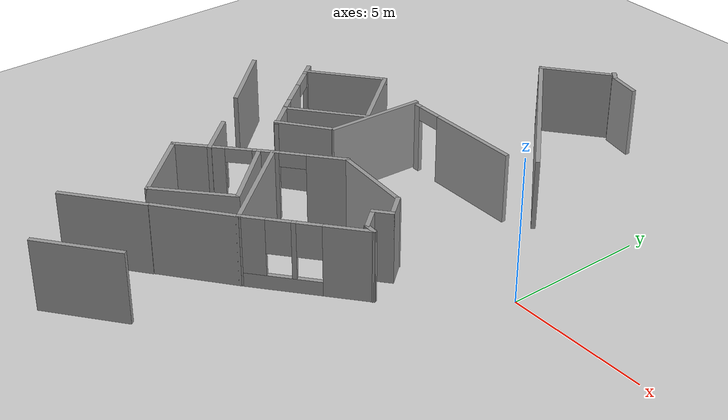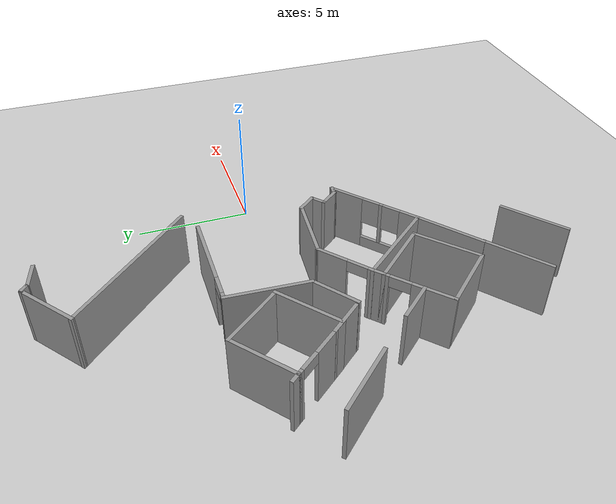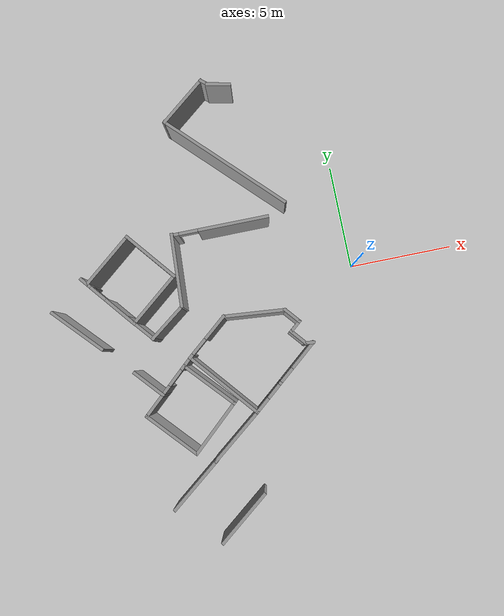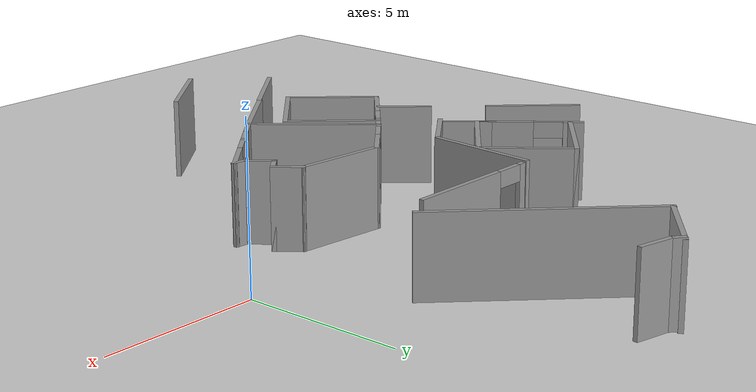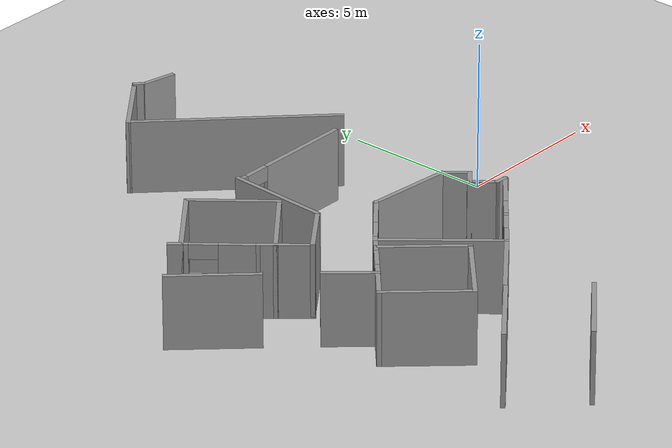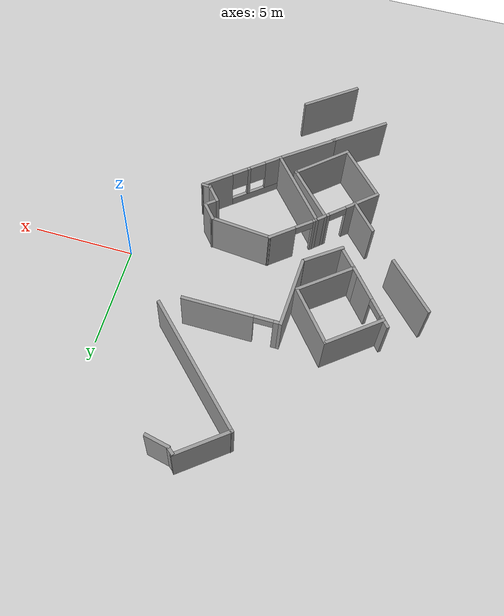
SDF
<sdf version="1.6">
 <world name="default">
  <model name="ground_plane">
   <static>1</static>
   <link name="link">
    <collision name="collision">
     <geometry><plane><normal>0 0 1</normal><size>100 100</size></plane></geometry>
     <surface>
      <contact><collide_bitmask>65535</collide_bitmask></contact>
      <friction><ode><mu>100</mu><mu2>50</mu2></ode></friction>
     </surface>
    </collision>
    <visual name="visual">
     <cast_shadows>0</cast_shadows>
     <geometry><plane><normal>0 0 1</normal><size>100 100</size></plane></geometry>
     <material>
      <script><uri>file://media/materials/scripts/gazebo.material</uri><name>Gazebo/Grey</name></script>
     </material>
    </visual>
   </link>
  </model>
  <model name="wall(6.9)">
   <link name="Wall_106">
    <inertial>
     <mass>1</mass>
     <inertia><ixx>1</ixx><ixy>0</ixy><ixz>0</ixz><iyy>1</iyy><iyz>0</iyz><izz>1</izz></inertia>
    </inertial>
    <visual name="Wall_106_Visual">
     <pose>0 0 1.25 0 -0 0</pose>
     <geometry><box><size>6.9 0.15 2.5</size></box></geometry>
     <material>
      <script><uri>file://media/materials/scripts/gazebo.material</uri><name>Gazebo/Grey</name></script>
      <ambient>1 1 1 1</ambient>
      <shader type="vertex"><normal_map>__default__</normal_map></shader>
      <diffuse>0.7 0.7 0.7 1</diffuse>
      <specular>0.01 0.01 0.01 1</specular>
      <emissive>0 0 0 1</emissive>
     </material>
     <meta><layer>0</layer></meta>
    </visual>
    <collision name="Wall_106_Collision">
     <pose>0 0 1.25 0 -0 0</pose>
     <geometry><box><size>6.75 0.15 2.5</size></box></geometry>
     <surface>
      <friction>
       <ode><mu>1</mu><mu2>1</mu2><fdir1>0 0 0</fdir1><slip1>0</slip1><slip2>0</slip2></ode>
       <torsional>
        <coefficient>1</coefficient>
        <patch_radius>0</patch_radius>
        <surface_radius>0</surface_radius>
        <use_patch_radius>1</use_patch_radius>
        <ode><slip>0</slip></ode>
       </torsional>
      </friction>
      <bounce><restitution_coefficient>0</restitution_coefficient><threshold>1e+06</threshold></bounce>
      <contact>
       <collide_without_contact>0</collide_without_contact>
       <collide_without_contact_bitmask>1</collide_without_contact_bitmask>
       <collide_bitmask>1</collide_bitmask>
       <ode>
        <soft_cfm>0</soft_cfm>
        <soft_erp>0.2</soft_erp>
        <kp>1e+13</kp>
        <kd>1</kd>
        <max_vel>0.01</max_vel>
        <min_depth>0</min_depth>
       </ode>
       <bullet>
        <split_impulse>1</split_impulse>
        <split_impulse_penetration_threshold>-0.01</split_impulse_penetration_threshold>
        <soft_cfm>0</soft_cfm>
        <soft_erp>0.2</soft_erp>
        <kp>1e+13</kp>
        <kd>1</kd>
       </bullet>
      </contact>
     </surface>
    </collision>
   </link>
   <static>1</static>
   <pose>-5.08386 5.75321 0 0 0 -0.789714</pose>
  </model>
  <model name="wall_6.75">
   <pose>-6.43503 8.95426 0 0 -0 0.672508</pose>
   <link name="Wall_108">
    <collision name="Wall_108_Collision">
     <geometry><box><size>2.75 0.15 2.5</size></box></geometry>
     <pose>0 0 1.25 0 -0 0</pose>
    </collision>
    <visual name="Wall_108_Visual">
     <pose>0 0 1.25 0 -0 0</pose>
     <geometry><box><size>2.75 0.15 2.5</size></box></geometry>
     <material>
      <script><uri>file://media/materials/scripts/gazebo.material</uri><name>Gazebo/Grey</name></script>
      <ambient>1 1 1 1</ambient>
     </material>
     <meta><layer>0</layer></meta>
    </visual>
   </link>
   <link name="Wall_109">
    <collision name="Wall_109_Collision">
     <geometry><box><size>0.15 0.15 2.5</size></box></geometry>
     <pose>0 0 1.25 0 -0 0</pose>
    </collision>
    <visual name="Wall_109_Visual">
     <pose>0 0 1.25 0 -0 0</pose>
     <geometry><box><size>0.15 0.15 2.5</size></box></geometry>
     <material>
      <script><uri>file://media/materials/scripts/gazebo.material</uri><name>Gazebo/Grey</name></script>
      <ambient>0 0 0 1</ambient>
     </material>
     <meta><layer>0</layer></meta>
    </visual>
    <pose>1.3 0 0 0 -0 0</pose>
   </link>
   <static>1</static>
  </model>
  <model name="wall(6.9)_0">
   <link name="Wall_106">
    <inertial>
     <mass>1</mass>
     <inertia><ixx>1</ixx><ixy>0</ixy><ixz>0</ixz><iyy>1</iyy><iyz>0</iyz><izz>1</izz></inertia>
    </inertial>
    <visual name="Wall_106_Visual">
     <pose>0 0 1.25 0 -0 0</pose>
     <geometry><box><size>0.4 0.15 2.5</size></box></geometry>
     <material>
      <script><uri>file://media/materials/scripts/gazebo.material</uri><name>Gazebo/Grey</name></script>
      <ambient>1 1 1 1</ambient>
      <shader type="vertex"><normal_map>__default__</normal_map></shader>
      <diffuse>0.7 0.7 0.7 1</diffuse>
      <specular>0.01 0.01 0.01 1</specular>
      <emissive>0 0 0 1</emissive>
     </material>
     <meta><layer>0</layer></meta>
    </visual>
    <collision name="Wall_106_Collision">
     <pose>0 0 1.25 0 -0 0</pose>
     <geometry><box><size>6.75 0.15 2.5</size></box></geometry>
     <surface>
      <friction>
       <ode><mu>1</mu><mu2>1</mu2><fdir1>0 0 0</fdir1><slip1>0</slip1><slip2>0</slip2></ode>
       <torsional>
        <coefficient>1</coefficient>
        <patch_radius>0</patch_radius>
        <surface_radius>0</surface_radius>
        <use_patch_radius>1</use_patch_radius>
        <ode><slip>0</slip></ode>
       </torsional>
      </friction>
      <bounce><restitution_coefficient>0</restitution_coefficient><threshold>1e+06</threshold></bounce>
      <contact>
       <collide_without_contact>0</collide_without_contact>
       <collide_without_contact_bitmask>1</collide_without_contact_bitmask>
       <collide_bitmask>1</collide_bitmask>
       <ode>
        <soft_cfm>0</soft_cfm>
        <soft_erp>0.2</soft_erp>
        <kp>1e+13</kp>
        <kd>1</kd>
        <max_vel>0.01</max_vel>
        <min_depth>0</min_depth>
       </ode>
       <bullet>
        <split_impulse>1</split_impulse>
        <split_impulse_penetration_threshold>-0.01</split_impulse_penetration_threshold>
        <soft_cfm>0</soft_cfm>
        <soft_erp>0.2</soft_erp>
        <kp>1e+13</kp>
        <kd>1</kd>
       </bullet>
      </contact>
     </surface>
    </collision>
   </link>
   <static>1</static>
   <pose>-5.32136 9.65621 0.050769 0 0 -0.689163</pose>
  </model>
  <model name="wall(1.2)">
   <link name="Wall_106">
    <inertial>
     <mass>1</mass>
     <inertia><ixx>1</ixx><ixy>0</ixy><ixz>0</ixz><iyy>1</iyy><iyz>0</iyz><izz>1</izz></inertia>
    </inertial>
    <visual name="Wall_106_Visual">
     <pose>0 0 1.25 0 -0 0</pose>
     <geometry><box><size>1.2 0.15 2.5</size></box></geometry>
     <material>
      <script><uri>file://media/materials/scripts/gazebo.material</uri><name>Gazebo/Grey</name></script>
      <ambient>1 1 1 1</ambient>
      <shader type="vertex"><normal_map>__default__</normal_map></shader>
      <diffuse>0.7 0.7 0.7 1</diffuse>
      <specular>0.01 0.01 0.01 1</specular>
      <emissive>0 0 0 1</emissive>
     </material>
     <meta><layer>0</layer></meta>
    </visual>
    <collision name="Wall_106_Collision">
     <pose>0 0 1.25 0 -0 0</pose>
     <geometry><box><size>6.75 0.15 2.5</size></box></geometry>
     <surface>
      <friction>
       <ode><mu>1</mu><mu2>1</mu2><fdir1>0 0 0</fdir1><slip1>0</slip1><slip2>0</slip2></ode>
       <torsional>
        <coefficient>1</coefficient>
        <patch_radius>0</patch_radius>
        <surface_radius>0</surface_radius>
        <use_patch_radius>1</use_patch_radius>
        <ode><slip>0</slip></ode>
       </torsional>
      </friction>
      <bounce><restitution_coefficient>0</restitution_coefficient><threshold>1e+06</threshold></bounce>
      <contact>
       <collide_without_contact>0</collide_without_contact>
       <collide_without_contact_bitmask>1</collide_without_contact_bitmask>
       <collide_bitmask>1</collide_bitmask>
       <ode>
        <soft_cfm>0</soft_cfm>
        <soft_erp>0.2</soft_erp>
        <kp>1e+13</kp>
        <kd>1</kd>
        <max_vel>0.01</max_vel>
        <min_depth>0</min_depth>
       </ode>
       <bullet>
        <split_impulse>1</split_impulse>
        <split_impulse_penetration_threshold>-0.01</split_impulse_penetration_threshold>
        <soft_cfm>0</soft_cfm>
        <soft_erp>0.2</soft_erp>
        <kp>1e+13</kp>
        <kd>1</kd>
       </bullet>
      </contact>
     </surface>
    </collision>
   </link>
   <static>1</static>
   <pose>-4.65892 9.41484 0.050769 0 0 -0.207289</pose>
  </model>
  <model name="P_tuna_room">
   <pose>-5.41392 -2.97136 0 0 0 -2.4469</pose>
   <link name="Wall_10">
    <collision name="Wall_10_Collision">
     <geometry><box><size>1 0.15 2.5</size></box></geometry>
     <pose>0 0 1.25 0 -0 0</pose>
    </collision>
    <visual name="Wall_10_Visual">
     <pose>0 0 1.25 0 -0 0</pose>
     <geometry><box><size>1 0.15 2.5</size></box></geometry>
     <material>
      <script><uri>file://media/materials/scripts/gazebo.material</uri><name>Gazebo/Grey</name></script>
      <ambient>1 1 1 1</ambient>
     </material>
     <meta><layer>0</layer></meta>
    </visual>
    <pose>-1.61072 1.30888 0 0 -0 1.5708</pose>
   </link>
   <link name="Wall_11">
    <collision name="Wall_11_Collision">
     <geometry><box><size>0.5 0.15 2.5</size></box></geometry>
     <pose>0 0 1.25 0 -0 0</pose>
    </collision>
    <visual name="Wall_11_Visual">
     <pose>0 0 1.25 0 -0 0</pose>
     <geometry><box><size>0.5 0.15 2.5</size></box></geometry>
     <material>
      <script><uri>file://media/materials/scripts/gazebo.material</uri><name>Gazebo/Grey</name></script>
      <ambient>1 1 1 1</ambient>
     </material>
     <meta><layer>0</layer></meta>
    </visual>
    <pose>-1.73447 1.85763 0 0 -0 2.35619</pose>
   </link>
   <link name="Wall_12">
    <pose>0.191787 1.98137 0 0 -0 0</pose>
    <visual name="Wall_12_Visual_0">
     <pose>-1.32113 0 1.25 0 -0 0</pose>
     <geometry><box><size>1.60774 0.15 2.5</size></box></geometry>
     <material>
      <script><uri>file://media/materials/scripts/gazebo.material</uri><name>Gazebo/Grey</name></script>
      <ambient>1 1 1 1</ambient>
     </material>
     <meta><layer>0</layer></meta>
    </visual>
    <collision name="Wall_12_Collision_0">
     <geometry><box><size>1.60774 0.15 2.5</size></box></geometry>
     <pose>-1.32113 0 1.25 0 -0 0</pose>
    </collision>
    <visual name="Wall_12_Visual_1">
     <pose>0.803871 0 0.25 0 -0 0</pose>
     <geometry><box><size>2.64226 0.15 0.5</size></box></geometry>
     <material>
      <script><uri>file://media/materials/scripts/gazebo.material</uri><name>Gazebo/Grey</name></script>
      <ambient>1 1 1 1</ambient>
     </material>
     <meta><layer>0</layer></meta>
    </visual>
    <collision name="Wall_12_Collision_1">
     <geometry><box><size>2.64226 0.15 0.5</size></box></geometry>
     <pose>0.803871 0 0.25 0 -0 0</pose>
    </collision>
    <visual name="Wall_12_Visual_2">
     <pose>0.357741 0 1.5 0 -0 0</pose>
     <geometry><box><size>0.15 0.15 2</size></box></geometry>
     <material>
      <script><uri>file://media/materials/scripts/gazebo.material</uri><name>Gazebo/Grey</name></script>
      <ambient>1 1 1 1</ambient>
     </material>
     <meta><layer>0</layer></meta>
    </visual>
    <collision name="Wall_12_Collision_2">
     <geometry><box><size>0.15 0.15 2</size></box></geometry>
     <pose>0.357741 0 1.5 0 -0 0</pose>
    </collision>
    <visual name="Wall_12_Visual_3">
     <pose>1.67887 0 1.5 0 -0 0</pose>
     <geometry><box><size>0.892259 0.15 2</size></box></geometry>
     <material>
      <script><uri>file://media/materials/scripts/gazebo.material</uri><name>Gazebo/Grey</name></script>
      <ambient>1 1 1 1</ambient>
     </material>
     <meta><layer>0</layer></meta>
    </visual>
    <collision name="Wall_12_Collision_3">
     <geometry><box><size>0.892259 0.15 2</size></box></geometry>
     <pose>1.67887 0 1.5 0 -0 0</pose>
    </collision>
    <visual name="Wall_12_Visual_4">
     <pose>-0.117259 0 1.9 0 -0 0</pose>
     <geometry><box><size>0.8 0.15 1.2</size></box></geometry>
     <material>
      <script><uri>file://media/materials/scripts/gazebo.material</uri><name>Gazebo/Grey</name></script>
      <ambient>1 1 1 1</ambient>
     </material>
     <meta><layer>0</layer></meta>
    </visual>
    <collision name="Wall_12_Collision_4">
     <geometry><box><size>0.8 0.15 1.2</size></box></geometry>
     <pose>-0.117259 0 1.9 0 -0 0</pose>
    </collision>
    <visual name="Wall_12_Visual_5">
     <pose>0.832741 0 1.9 0 -0 0</pose>
     <geometry><box><size>0.8 0.15 1.2</size></box></geometry>
     <material>
      <script><uri>file://media/materials/scripts/gazebo.material</uri><name>Gazebo/Grey</name></script>
      <ambient>1 1 1 1</ambient>
     </material>
     <meta><layer>0</layer></meta>
    </visual>
    <collision name="Wall_12_Collision_5">
     <geometry><box><size>0.8 0.15 1.2</size></box></geometry>
     <pose>0.832741 0 1.9 0 -0 0</pose>
    </collision>
   </link>
   <link name="Wall_13">
    <collision name="Wall_13_Collision">
     <geometry><box><size>4.1137 0.15 2.5</size></box></geometry>
     <pose>0 0 1.25 0 -0 0</pose>
    </collision>
    <visual name="Wall_13_Visual">
     <pose>0 0 1.25 0 -0 0</pose>
     <geometry><box><size>4.1137 0.15 2.5</size></box></geometry>
     <material>
      <script><uri>file://media/materials/scripts/gazebo.material</uri><name>Gazebo/Grey</name></script>
      <ambient>1 1 1 1</ambient>
     </material>
     <meta><layer>0</layer></meta>
    </visual>
    <pose>2.24166 0 0 0 -0 -1.57086</pose>
   </link>
   <link name="Wall_6">
    <pose>1.02303 -1.98137 0 0 -0 3.14159</pose>
    <visual name="Wall_6_Visual_0">
     <pose>-1.1525 0 1.25 0 -0 0</pose>
     <geometry><box><size>0.282 0.15 2.5</size></box></geometry>
     <material>
      <script><uri>file://media/materials/scripts/gazebo.material</uri><name>Gazebo/Grey</name></script>
      <ambient>1 1 1 1</ambient>
     </material>
     <meta><layer>0</layer></meta>
    </visual>
    <collision name="Wall_6_Collision_0">
     <geometry><box><size>0.282 0.15 2.5</size></box></geometry>
     <pose>-1.1525 0 1.25 0 -0 0</pose>
    </collision>
    <visual name="Wall_6_Visual_1">
     <pose>0.591 0 1.25 0 -0 0</pose>
     <geometry><box><size>1.405 0.15 2.5</size></box></geometry>
     <material>
      <script><uri>file://media/materials/scripts/gazebo.material</uri><name>Gazebo/Grey</name></script>
      <ambient>1 1 1 1</ambient>
     </material>
     <meta><layer>0</layer></meta>
    </visual>
    <collision name="Wall_6_Collision_1">
     <geometry><box><size>1.405 0.15 2.5</size></box></geometry>
     <pose>0.591 0 1.25 0 -0 0</pose>
    </collision>
    <visual name="Wall_6_Visual_2">
     <pose>-0.5615 0 2.25 0 -0 0</pose>
     <geometry><box><size>0.9 0.15 0.5</size></box></geometry>
     <material>
      <script><uri>file://media/materials/scripts/gazebo.material</uri><name>Gazebo/Grey</name></script>
      <ambient>1 1 1 1</ambient>
     </material>
     <meta><layer>0</layer></meta>
    </visual>
    <collision name="Wall_6_Collision_2">
     <geometry><box><size>0.9 0.15 0.5</size></box></geometry>
     <pose>-0.5615 0 2.25 0 -0 0</pose>
    </collision>
   </link>
   <link name="Wall_7">
    <collision name="Wall_7_Collision">
     <geometry><box><size>3 0.15 2.5</size></box></geometry>
     <pose>0 0 1.25 0 -0 0</pose>
    </collision>
    <visual name="Wall_7_Visual">
     <pose>0 0 1.25 0 -0 0</pose>
     <geometry><box><size>3 0.15 2.5</size></box></geometry>
     <material>
      <script><uri>file://media/materials/scripts/gazebo.material</uri><name>Gazebo/Grey</name></script>
      <ambient>1 1 1 1</ambient>
     </material>
     <meta><layer>0</layer></meta>
    </visual>
    <pose>-1.2031 -0.973744 0 0 -0 2.35619</pose>
   </link>
   <link name="Wall_8">
    <collision name="Wall_8_Collision">
     <geometry><box><size>1 0.15 2.5</size></box></geometry>
     <pose>0 0 1.25 0 -0 0</pose>
    </collision>
    <visual name="Wall_8_Visual">
     <pose>0 0 1.25 0 -0 0</pose>
     <geometry><box><size>1 0.15 2.5</size></box></geometry>
     <material>
      <script><uri>file://media/materials/scripts/gazebo.material</uri><name>Gazebo/Grey</name></script>
      <ambient>1 1 1 1</ambient>
     </material>
     <meta><layer>0</layer></meta>
    </visual>
    <pose>-2.21073 0.458884 0 0 -0 1.5708</pose>
   </link>
   <link name="Wall_9">
    <collision name="Wall_9_Collision">
     <geometry><box><size>0.75 0.15 2.5</size></box></geometry>
     <pose>0 0 1.25 0 -0 0</pose>
    </collision>
    <visual name="Wall_9_Visual">
     <pose>0 0 1.25 0 -0 0</pose>
     <geometry><box><size>0.75 0.15 2.5</size></box></geometry>
     <material>
      <script><uri>file://media/materials/scripts/gazebo.material</uri><name>Gazebo/Grey</name></script>
      <ambient>1 1 1 1</ambient>
     </material>
     <meta><layer>0</layer></meta>
    </visual>
    <pose>-1.91073 0.883883 0 0 -0 0</pose>
   </link>
   <static>1</static>
  </model>
  <model name="door_lukna_room_0">
   <pose>-5.81468 2.83917 0 0 -0 0</pose>
   <link name="Wall_15">
    <visual name="Wall_15_Visual_0">
     <pose>-2.1275 0 1.25 0 -0 0</pose>
     <geometry><box><size>0.245 0.15 2.5</size></box></geometry>
     <material>
      <script><uri>file://media/materials/scripts/gazebo.material</uri><name>Gazebo/Grey</name></script>
      <ambient>1 1 1 1</ambient>
     </material>
     <meta><layer>0</layer></meta>
    </visual>
    <collision name="Wall_15_Collision_0">
     <geometry><box><size>0.245 0.15 2.5</size></box></geometry>
     <pose>-2.1275 0 1.25 0 -0 0</pose>
    </collision>
    <visual name="Wall_15_Visual_1">
     <pose>0.5725 0 1.25 0 -0 0</pose>
     <geometry><box><size>3.355 0.15 2.5</size></box></geometry>
     <material>
      <script><uri>file://media/materials/scripts/gazebo.material</uri><name>Gazebo/Grey</name></script>
      <ambient>1 1 1 1</ambient>
     </material>
     <meta><layer>0</layer></meta>
    </visual>
    <collision name="Wall_15_Collision_1">
     <geometry><box><size>3.355 0.15 2.5</size></box></geometry>
     <pose>0.5725 0 1.25 0 -0 0</pose>
    </collision>
    <visual name="Wall_15_Visual_2">
     <pose>-1.555 0 2.25 0 -0 0</pose>
     <geometry><box><size>0.9 0.15 0.5</size></box></geometry>
     <material>
      <script><uri>file://media/materials/scripts/gazebo.material</uri><name>Gazebo/Grey</name></script>
      <ambient>1 1 1 1</ambient>
     </material>
     <meta><layer>0</layer></meta>
    </visual>
    <collision name="Wall_15_Collision_2">
     <geometry><box><size>0.9 0.15 0.5</size></box></geometry>
     <pose>-1.555 0 2.25 0 -0 0</pose>
    </collision>
   </link>
   <static>1</static>
  </model>
  <model name="wall(3.5)">
   <link name="Wall_106">
    <pose>1.09405 -0.024737 0 0 -0 0</pose>
    <inertial>
     <mass>1</mass>
     <inertia><ixx>1</ixx><ixy>0</ixy><ixz>0</ixz><iyy>1</iyy><iyz>0</iyz><izz>1</izz></inertia>
    </inertial>
    <visual name="Wall_106_Visual">
     <pose>0 0 1.25 0 -0 0</pose>
     <geometry><box><size>3.5 0.15 2.5</size></box></geometry>
     <material>
      <script><uri>file://media/materials/scripts/gazebo.material</uri><name>Gazebo/Grey</name></script>
      <ambient>1 1 1 1</ambient>
      <shader type="vertex"><normal_map>__default__</normal_map></shader>
      <diffuse>0.7 0.7 0.7 1</diffuse>
      <specular>0.01 0.01 0.01 1</specular>
      <emissive>0 0 0 1</emissive>
     </material>
     <meta><layer>0</layer></meta>
    </visual>
    <collision name="Wall_106_Collision">
     <pose>0 0 1.25 0 -0 0</pose>
     <geometry><box><size>6.75 0.15 2.5</size></box></geometry>
     <surface>
      <friction>
       <ode><mu>1</mu><mu2>1</mu2><fdir1>0 0 0</fdir1><slip1>0</slip1><slip2>0</slip2></ode>
       <torsional>
        <coefficient>1</coefficient>
        <patch_radius>0</patch_radius>
        <surface_radius>0</surface_radius>
        <use_patch_radius>1</use_patch_radius>
        <ode><slip>0</slip></ode>
       </torsional>
      </friction>
      <bounce><restitution_coefficient>0</restitution_coefficient><threshold>1e+06</threshold></bounce>
      <contact>
       <collide_without_contact>0</collide_without_contact>
       <collide_without_contact_bitmask>1</collide_without_contact_bitmask>
       <collide_bitmask>1</collide_bitmask>
       <ode>
        <soft_cfm>0</soft_cfm>
        <soft_erp>0.2</soft_erp>
        <kp>1e+13</kp>
        <kd>1</kd>
        <max_vel>0.01</max_vel>
        <min_depth>0</min_depth>
       </ode>
       <bullet>
        <split_impulse>1</split_impulse>
        <split_impulse_penetration_threshold>-0.01</split_impulse_penetration_threshold>
        <soft_cfm>0</soft_cfm>
        <soft_erp>0.2</soft_erp>
        <kp>1e+13</kp>
        <kd>1</kd>
       </bullet>
      </contact>
     </surface>
    </collision>
   </link>
   <static>1</static>
   <pose>-8.15154 2.2845 0.050769 0 0 -1.62267</pose>
  </model>
  <model name="wall(2)_clone">
   <link name="Wall_106">
    <pose>0.407329 -0.052672 0 0 -0 0</pose>
    <inertial>
     <mass>1</mass>
     <inertia><ixx>1</ixx><ixy>0</ixy><ixz>0</ixz><iyy>1</iyy><iyz>0</iyz><izz>1</izz></inertia>
    </inertial>
    <visual name="Wall_106_Visual">
     <pose>0 0 1.25 0 -0 0</pose>
     <geometry><box><size>2 0.15 2.5</size></box></geometry>
     <material>
      <script><uri>file://media/materials/scripts/gazebo.material</uri><name>Gazebo/Grey</name></script>
      <ambient>1 1 1 1</ambient>
      <shader type="vertex"><normal_map>__default__</normal_map></shader>
      <diffuse>0.7 0.7 0.7 1</diffuse>
      <specular>0.01 0.01 0.01 1</specular>
      <emissive>0 0 0 1</emissive>
     </material>
     <meta><layer>0</layer></meta>
    </visual>
    <collision name="Wall_106_Collision">
     <pose>0 0 1.25 0 -0 0</pose>
     <geometry><box><size>6.75 0.15 2.5</size></box></geometry>
     <surface>
      <friction>
       <ode><mu>1</mu><mu2>1</mu2><fdir1>0 0 0</fdir1><slip1>0</slip1><slip2>0</slip2></ode>
       <torsional>
        <coefficient>1</coefficient>
        <patch_radius>0</patch_radius>
        <surface_radius>0</surface_radius>
        <use_patch_radius>1</use_patch_radius>
        <ode><slip>0</slip></ode>
       </torsional>
      </friction>
      <bounce><restitution_coefficient>0</restitution_coefficient><threshold>1e+06</threshold></bounce>
      <contact>
       <collide_without_contact>0</collide_without_contact>
       <collide_without_contact_bitmask>1</collide_without_contact_bitmask>
       <collide_bitmask>1</collide_bitmask>
       <ode>
        <soft_cfm>0</soft_cfm>
        <soft_erp>0.2</soft_erp>
        <kp>1e+13</kp>
        <kd>1</kd>
        <max_vel>0.01</max_vel>
        <min_depth>0</min_depth>
       </ode>
       <bullet>
        <split_impulse>1</split_impulse>
        <split_impulse_penetration_threshold>-0.01</split_impulse_penetration_threshold>
        <soft_cfm>0</soft_cfm>
        <soft_erp>0.2</soft_erp>
        <kp>1e+13</kp>
        <kd>1</kd>
       </bullet>
      </contact>
     </surface>
    </collision>
   </link>
   <static>1</static>
   <pose>-8.80347 -0.929722 0.050769 0 0 -2.49723</pose>
  </model>
  <model name="near_tuna_room">
   <pose>-8.70827 -5.09213 0 0 0 -2.40436</pose>
   <link name="Wall_20">
    <collision name="Wall_20_Collision">
     <geometry><box><size>0.5 0.15 2.5</size></box></geometry>
     <pose>0 0 1.25 0 -0 0</pose>
    </collision>
    <visual name="Wall_20_Visual">
     <pose>0 0 1.25 0 -0 0</pose>
     <geometry><box><size>0.5 0.15 2.5</size></box></geometry>
     <material>
      <script><uri>file://media/materials/scripts/gazebo.material</uri><name>Gazebo/Grey</name></script>
      <ambient>1 1 1 1</ambient>
     </material>
     <meta><layer>0</layer></meta>
    </visual>
    <pose>-1.425 -1.425 0 0 -0 0</pose>
   </link>
   <link name="Wall_21">
    <collision name="Wall_21_Collision">
     <geometry><box><size>3 0.15 2.5</size></box></geometry>
     <pose>0 0 1.25 0 -0 0</pose>
    </collision>
    <visual name="Wall_21_Visual">
     <pose>0 0 1.25 0 -0 0</pose>
     <geometry><box><size>3 0.15 2.5</size></box></geometry>
     <material>
      <script><uri>file://media/materials/scripts/gazebo.material</uri><name>Gazebo/Grey</name></script>
      <ambient>1 1 1 1</ambient>
     </material>
     <meta><layer>0</layer></meta>
    </visual>
    <pose>-1.25 -0 0 0 -0 1.5708</pose>
   </link>
   <link name="Wall_22">
    <collision name="Wall_22_Collision">
     <geometry><box><size>3 0.15 2.5</size></box></geometry>
     <pose>0 0 1.25 0 -0 0</pose>
    </collision>
    <visual name="Wall_22_Visual">
     <pose>0 0 1.25 0 -0 0</pose>
     <geometry><box><size>3 0.15 2.5</size></box></geometry>
     <material>
      <script><uri>file://media/materials/scripts/gazebo.material</uri><name>Gazebo/Grey</name></script>
      <ambient>1 1 1 1</ambient>
     </material>
     <meta><layer>0</layer></meta>
    </visual>
    <pose>0.175 1.425 0 0 -0 0</pose>
   </link>
   <link name="Wall_23">
    <collision name="Wall_23_Collision">
     <geometry><box><size>3 0.15 2.5</size></box></geometry>
     <pose>0 0 1.25 0 -0 0</pose>
    </collision>
    <visual name="Wall_23_Visual">
     <pose>0 0 1.25 0 -0 0</pose>
     <geometry><box><size>3 0.15 2.5</size></box></geometry>
     <material>
      <script><uri>file://media/materials/scripts/gazebo.material</uri><name>Gazebo/Grey</name></script>
      <ambient>1 1 1 1</ambient>
     </material>
     <meta><layer>0</layer></meta>
    </visual>
    <pose>1.6 -0 0 0 -0 -1.5708</pose>
   </link>
   <link name="Wall_24">
    <pose>0.175 -1.425 0 0 -0 3.14159</pose>
    <visual name="Wall_24_Visual_0">
     <pose>-0.5975 0 1.25 0 -0 0</pose>
     <geometry><box><size>1.805 0.15 2.5</size></box></geometry>
     <material>
      <script><uri>file://media/materials/scripts/gazebo.material</uri><name>Gazebo/Grey</name></script>
      <ambient>1 1 1 1</ambient>
     </material>
     <meta><layer>0</layer></meta>
    </visual>
    <collision name="Wall_24_Collision_0">
     <geometry><box><size>1.805 0.15 2.5</size></box></geometry>
     <pose>-0.5975 0 1.25 0 -0 0</pose>
    </collision>
    <visual name="Wall_24_Visual_1">
     <pose>1.3525 0 1.25 0 -0 0</pose>
     <geometry><box><size>0.295 0.15 2.5</size></box></geometry>
     <material>
      <script><uri>file://media/materials/scripts/gazebo.material</uri><name>Gazebo/Grey</name></script>
      <ambient>1 1 1 1</ambient>
     </material>
     <meta><layer>0</layer></meta>
    </visual>
    <collision name="Wall_24_Collision_1">
     <geometry><box><size>0.295 0.15 2.5</size></box></geometry>
     <pose>1.3525 0 1.25 0 -0 0</pose>
    </collision>
    <visual name="Wall_24_Visual_2">
     <pose>0.755 0 2.25 0 -0 0</pose>
     <geometry><box><size>0.9 0.15 0.5</size></box></geometry>
     <material>
      <script><uri>file://media/materials/scripts/gazebo.material</uri><name>Gazebo/Grey</name></script>
      <ambient>1 1 1 1</ambient>
     </material>
     <meta><layer>0</layer></meta>
    </visual>
    <collision name="Wall_24_Collision_2">
     <geometry><box><size>0.9 0.15 0.5</size></box></geometry>
     <pose>0.755 0 2.25 0 -0 0</pose>
    </collision>
   </link>
   <static>1</static>
  </model>
  <model name="near_tuna_room_clone">
   <pose>-10.5216 1.31535 0 0 0 -0.889073</pose>
   <link name="Wall_20">
    <collision name="Wall_20_Collision">
     <geometry><box><size>0.5 0.15 2.5</size></box></geometry>
     <pose>0 0 1.25 0 -0 0</pose>
    </collision>
    <visual name="Wall_20_Visual">
     <pose>0 0 1.25 0 -0 0</pose>
     <geometry><box><size>0.5 0.15 2.5</size></box></geometry>
     <material>
      <script><uri>file://media/materials/scripts/gazebo.material</uri><name>Gazebo/Grey</name></script>
      <ambient>1 1 1 1</ambient>
     </material>
     <meta><layer>0</layer></meta>
    </visual>
    <pose>-1.425 -1.425 0 0 -0 0</pose>
   </link>
   <link name="Wall_21">
    <collision name="Wall_21_Collision">
     <geometry><box><size>3 0.15 2.5</size></box></geometry>
     <pose>0 0 1.25 0 -0 0</pose>
    </collision>
    <visual name="Wall_21_Visual">
     <pose>0 0 1.25 0 -0 0</pose>
     <geometry><box><size>3 0.15 2.5</size></box></geometry>
     <material>
      <script><uri>file://media/materials/scripts/gazebo.material</uri><name>Gazebo/Grey</name></script>
      <ambient>1 1 1 1</ambient>
     </material>
     <meta><layer>0</layer></meta>
    </visual>
    <pose>-1.25 -0 0 0 -0 1.5708</pose>
   </link>
   <link name="Wall_22">
    <collision name="Wall_22_Collision">
     <geometry><box><size>3 0.15 2.5</size></box></geometry>
     <pose>0 0 1.25 0 -0 0</pose>
    </collision>
    <visual name="Wall_22_Visual">
     <pose>0 0 1.25 0 -0 0</pose>
     <geometry><box><size>3 0.15 2.5</size></box></geometry>
     <material>
      <script><uri>file://media/materials/scripts/gazebo.material</uri><name>Gazebo/Grey</name></script>
      <ambient>1 1 1 1</ambient>
     </material>
     <meta><layer>0</layer></meta>
    </visual>
    <pose>0.175 1.425 0 0 -0 0</pose>
   </link>
   <link name="Wall_23">
    <collision name="Wall_23_Collision">
     <geometry><box><size>3 0.15 2.5</size></box></geometry>
     <pose>0 0 1.25 0 -0 0</pose>
    </collision>
    <visual name="Wall_23_Visual">
     <pose>0 0 1.25 0 -0 0</pose>
     <geometry><box><size>3 0.15 2.5</size></box></geometry>
     <material>
      <script><uri>file://media/materials/scripts/gazebo.material</uri><name>Gazebo/Grey</name></script>
      <ambient>1 1 1 1</ambient>
     </material>
     <meta><layer>0</layer></meta>
    </visual>
    <pose>1.6 -0 0 0 -0 -1.5708</pose>
   </link>
   <link name="Wall_24">
    <pose>0.175 -1.425 0 0 -0 3.14159</pose>
    <visual name="Wall_24_Visual_0">
     <pose>-0.5975 0 1.25 0 -0 0</pose>
     <geometry><box><size>1.805 0.15 2.5</size></box></geometry>
     <material>
      <script><uri>file://media/materials/scripts/gazebo.material</uri><name>Gazebo/Grey</name></script>
      <ambient>1 1 1 1</ambient>
     </material>
     <meta><layer>0</layer></meta>
    </visual>
    <collision name="Wall_24_Collision_0">
     <geometry><box><size>1.805 0.15 2.5</size></box></geometry>
     <pose>-0.5975 0 1.25 0 -0 0</pose>
    </collision>
    <visual name="Wall_24_Visual_1">
     <pose>1.3525 0 1.25 0 -0 0</pose>
     <geometry><box><size>0.295 0.15 2.5</size></box></geometry>
     <material>
      <script><uri>file://media/materials/scripts/gazebo.material</uri><name>Gazebo/Grey</name></script>
      <ambient>1 1 1 1</ambient>
     </material>
     <meta><layer>0</layer></meta>
    </visual>
    <collision name="Wall_24_Collision_1">
     <geometry><box><size>0.295 0.15 2.5</size></box></geometry>
     <pose>1.3525 0 1.25 0 -0 0</pose>
    </collision>
    <visual name="Wall_24_Visual_2">
     <pose>0.755 0 2.25 0 -0 0</pose>
     <geometry><box><size>0.9 0.15 0.5</size></box></geometry>
     <material>
      <script><uri>file://media/materials/scripts/gazebo.material</uri><name>Gazebo/Grey</name></script>
      <ambient>1 1 1 1</ambient>
     </material>
     <meta><layer>0</layer></meta>
    </visual>
    <collision name="Wall_24_Collision_2">
     <geometry><box><size>0.9 0.15 0.5</size></box></geometry>
     <pose>0.755 0 2.25 0 -0 0</pose>
    </collision>
   </link>
   <static>1</static>
  </model>
  <model name="wall(1.8)_0">
   <link name="Wall_106">
    <inertial>
     <mass>1</mass>
     <inertia><ixx>1</ixx><ixy>0</ixy><ixz>0</ixz><iyy>1</iyy><iyz>0</iyz><izz>1</izz></inertia>
    </inertial>
    <visual name="Wall_106_Visual">
     <pose>0 0 1.25 0 -0 0</pose>
     <geometry><box><size>1.8 0.15 2.5</size></box></geometry>
     <material>
      <script><uri>file://media/materials/scripts/gazebo.material</uri><name>Gazebo/Grey</name></script>
      <ambient>1 1 1 1</ambient>
      <shader type="vertex"><normal_map>__default__</normal_map></shader>
      <diffuse>0.7 0.7 0.7 1</diffuse>
      <specular>0.01 0.01 0.01 1</specular>
      <emissive>0 0 0 1</emissive>
     </material>
     <meta><layer>0</layer></meta>
    </visual>
    <collision name="Wall_106_Collision">
     <pose>0 0 1.25 0 -0 0</pose>
     <geometry><box><size>6.75 0.15 2.5</size></box></geometry>
     <surface>
      <friction>
       <ode><mu>1</mu><mu2>1</mu2><fdir1>0 0 0</fdir1><slip1>0</slip1><slip2>0</slip2></ode>
       <torsional>
        <coefficient>1</coefficient>
        <patch_radius>0</patch_radius>
        <surface_radius>0</surface_radius>
        <use_patch_radius>1</use_patch_radius>
        <ode><slip>0</slip></ode>
       </torsional>
      </friction>
      <bounce><restitution_coefficient>0</restitution_coefficient><threshold>1e+06</threshold></bounce>
      <contact>
       <collide_without_contact>0</collide_without_contact>
       <collide_without_contact_bitmask>1</collide_without_contact_bitmask>
       <collide_bitmask>1</collide_bitmask>
       <ode>
        <soft_cfm>0</soft_cfm>
        <soft_erp>0.2</soft_erp>
        <kp>1e+13</kp>
        <kd>1</kd>
        <max_vel>0.01</max_vel>
        <min_depth>0</min_depth>
       </ode>
       <bullet>
        <split_impulse>1</split_impulse>
        <split_impulse_penetration_threshold>-0.01</split_impulse_penetration_threshold>
        <soft_cfm>0</soft_cfm>
        <soft_erp>0.2</soft_erp>
        <kp>1e+13</kp>
        <kd>1</kd>
       </bullet>
      </contact>
     </surface>
    </collision>
   </link>
   <static>1</static>
   <pose>-10.4143 -1.05613 0 0 0 -0.870932</pose>
  </model>
  <model name="wall(1.8)_0_clone">
   <link name="Wall_106">
    <inertial>
     <mass>1</mass>
     <inertia><ixx>1</ixx><ixy>0</ixy><ixz>0</ixz><iyy>1</iyy><iyz>0</iyz><izz>1</izz></inertia>
    </inertial>
    <visual name="Wall_106_Visual">
     <pose>0 0 1.25 0 -0 0</pose>
     <geometry><box><size>1.8 0.15 2.5</size></box></geometry>
     <material>
      <script><uri>file://media/materials/scripts/gazebo.material</uri><name>Gazebo/Grey</name></script>
      <ambient>1 1 1 1</ambient>
      <shader type="vertex"><normal_map>__default__</normal_map></shader>
      <diffuse>0.7 0.7 0.7 1</diffuse>
      <specular>0.01 0.01 0.01 1</specular>
      <emissive>0 0 0 1</emissive>
     </material>
     <meta><layer>0</layer></meta>
    </visual>
    <collision name="Wall_106_Collision">
     <pose>0 0 1.25 0 -0 0</pose>
     <geometry><box><size>6.75 0.15 2.5</size></box></geometry>
     <surface>
      <friction>
       <ode><mu>1</mu><mu2>1</mu2><fdir1>0 0 0</fdir1><slip1>0</slip1><slip2>0</slip2></ode>
       <torsional>
        <coefficient>1</coefficient>
        <patch_radius>0</patch_radius>
        <surface_radius>0</surface_radius>
        <use_patch_radius>1</use_patch_radius>
        <ode><slip>0</slip></ode>
       </torsional>
      </friction>
      <bounce><restitution_coefficient>0</restitution_coefficient><threshold>1e+06</threshold></bounce>
      <contact>
       <collide_without_contact>0</collide_without_contact>
       <collide_without_contact_bitmask>1</collide_without_contact_bitmask>
       <collide_bitmask>1</collide_bitmask>
       <ode>
        <soft_cfm>0</soft_cfm>
        <soft_erp>0.2</soft_erp>
        <kp>1e+13</kp>
        <kd>1</kd>
        <max_vel>0.01</max_vel>
        <min_depth>0</min_depth>
       </ode>
       <bullet>
        <split_impulse>1</split_impulse>
        <split_impulse_penetration_threshold>-0.01</split_impulse_penetration_threshold>
        <soft_cfm>0</soft_cfm>
        <soft_erp>0.2</soft_erp>
        <kp>1e+13</kp>
        <kd>1</kd>
       </bullet>
      </contact>
     </surface>
    </collision>
   </link>
   <static>1</static>
   <pose>-10.4833 -3.68035 0 0 0 -0.848362</pose>
  </model>
  <model name="wall(3)_0">
   <link name="Wall_106">
    <pose>-2.9353 0.017524 0 0 0 -0.005631</pose>
    <inertial>
     <mass>1</mass>
     <inertia><ixx>1</ixx><ixy>0</ixy><ixz>0</ixz><iyy>1</iyy><iyz>0</iyz><izz>1</izz></inertia>
    </inertial>
    <visual name="Wall_106_Visual">
     <pose>0 0 1.25 0 -0 0</pose>
     <geometry><box><size>3 0.15 2.5</size></box></geometry>
     <material>
      <script><uri>file://media/materials/scripts/gazebo.material</uri><name>Gazebo/Grey</name></script>
      <ambient>1 1 1 1</ambient>
      <shader type="vertex"><normal_map>__default__</normal_map></shader>
      <diffuse>0.7 0.7 0.7 1</diffuse>
      <specular>0.01 0.01 0.01 1</specular>
      <emissive>0 0 0 1</emissive>
     </material>
     <meta><layer>0</layer></meta>
    </visual>
    <collision name="Wall_106_Collision">
     <pose>0 0 1.25 0 -0 0</pose>
     <geometry><box><size>6.75 0.15 2.5</size></box></geometry>
     <surface>
      <friction>
       <ode><mu>1</mu><mu2>1</mu2><fdir1>0 0 0</fdir1><slip1>0</slip1><slip2>0</slip2></ode>
       <torsional>
        <coefficient>1</coefficient>
        <patch_radius>0</patch_radius>
        <surface_radius>0</surface_radius>
        <use_patch_radius>1</use_patch_radius>
        <ode><slip>0</slip></ode>
       </torsional>
      </friction>
      <bounce><restitution_coefficient>0</restitution_coefficient><threshold>1e+06</threshold></bounce>
      <contact>
       <collide_without_contact>0</collide_without_contact>
       <collide_without_contact_bitmask>1</collide_without_contact_bitmask>
       <collide_bitmask>1</collide_bitmask>
       <ode>
        <soft_cfm>0</soft_cfm>
        <soft_erp>0.2</soft_erp>
        <kp>1e+13</kp>
        <kd>1</kd>
        <max_vel>0.01</max_vel>
        <min_depth>0</min_depth>
       </ode>
       <bullet>
        <split_impulse>1</split_impulse>
        <split_impulse_penetration_threshold>-0.01</split_impulse_penetration_threshold>
        <soft_cfm>0</soft_cfm>
        <soft_erp>0.2</soft_erp>
        <kp>1e+13</kp>
        <kd>1</kd>
       </bullet>
      </contact>
     </surface>
    </collision>
   </link>
   <static>1</static>
   <pose>-5.1003 -8.68853 0 0 -0 0.671072</pose>
  </model>
  <model name="wall(3)_0_clone">
   <link name="Wall_106">
    <pose>-2.9353 0.017524 0 0 0 -0.005631</pose>
    <inertial>
     <mass>1</mass>
     <inertia><ixx>1</ixx><ixy>0</ixy><ixz>0</ixz><iyy>1</iyy><iyz>0</iyz><izz>1</izz></inertia>
    </inertial>
    <visual name="Wall_106_Visual">
     <pose>0 0 1.25 0 -0 0</pose>
     <geometry><box><size>3 0.15 2.5</size></box></geometry>
     <material>
      <script><uri>file://media/materials/scripts/gazebo.material</uri><name>Gazebo/Grey</name></script>
      <ambient>1 1 1 1</ambient>
      <shader type="vertex"><normal_map>__default__</normal_map></shader>
      <diffuse>0.7 0.7 0.7 1</diffuse>
      <specular>0.01 0.01 0.01 1</specular>
      <emissive>0 0 0 1</emissive>
     </material>
     <meta><layer>0</layer></meta>
    </visual>
    <collision name="Wall_106_Collision">
     <pose>0 0 1.25 0 -0 0</pose>
     <geometry><box><size>6.75 0.15 2.5</size></box></geometry>
     <surface>
      <friction>
       <ode><mu>1</mu><mu2>1</mu2><fdir1>0 0 0</fdir1><slip1>0</slip1><slip2>0</slip2></ode>
       <torsional>
        <coefficient>1</coefficient>
        <patch_radius>0</patch_radius>
        <surface_radius>0</surface_radius>
        <use_patch_radius>1</use_patch_radius>
        <ode><slip>0</slip></ode>
       </torsional>
      </friction>
      <bounce><restitution_coefficient>0</restitution_coefficient><threshold>1e+06</threshold></bounce>
      <contact>
       <collide_without_contact>0</collide_without_contact>
       <collide_without_contact_bitmask>1</collide_without_contact_bitmask>
       <collide_bitmask>1</collide_bitmask>
       <ode>
        <soft_cfm>0</soft_cfm>
        <soft_erp>0.2</soft_erp>
        <kp>1e+13</kp>
        <kd>1</kd>
        <max_vel>0.01</max_vel>
        <min_depth>0</min_depth>
       </ode>
       <bullet>
        <split_impulse>1</split_impulse>
        <split_impulse_penetration_threshold>-0.01</split_impulse_penetration_threshold>
        <soft_cfm>0</soft_cfm>
        <soft_erp>0.2</soft_erp>
        <kp>1e+13</kp>
        <kd>1</kd>
       </bullet>
      </contact>
     </surface>
    </collision>
   </link>
   <static>1</static>
   <pose>-6.95077 -6.80655 0 0 -0 0.671072</pose>
  </model>
  <model name="wall(3)_0_clone_clone">
   <link name="Wall_106">
    <pose>-2.9353 0.017524 0 0 0 -0.005631</pose>
    <inertial>
     <mass>1</mass>
     <inertia><ixx>1</ixx><ixy>0</ixy><ixz>0</ixz><iyy>1</iyy><iyz>0</iyz><izz>1</izz></inertia>
    </inertial>
    <visual name="Wall_106_Visual">
     <pose>0 0 1.25 0 -0 0</pose>
     <geometry><box><size>3 0.15 2.5</size></box></geometry>
     <material>
      <script><uri>file://media/materials/scripts/gazebo.material</uri><name>Gazebo/Grey</name></script>
      <ambient>1 1 1 1</ambient>
      <shader type="vertex"><normal_map>__default__</normal_map></shader>
      <diffuse>0.7 0.7 0.7 1</diffuse>
      <specular>0.01 0.01 0.01 1</specular>
      <emissive>0 0 0 1</emissive>
     </material>
     <meta><layer>0</layer></meta>
    </visual>
    <collision name="Wall_106_Collision">
     <pose>0 0 1.25 0 -0 0</pose>
     <geometry><box><size>6.75 0.15 2.5</size></box></geometry>
     <surface>
      <friction>
       <ode><mu>1</mu><mu2>1</mu2><fdir1>0 0 0</fdir1><slip1>0</slip1><slip2>0</slip2></ode>
       <torsional>
        <coefficient>1</coefficient>
        <patch_radius>0</patch_radius>
        <surface_radius>0</surface_radius>
        <use_patch_radius>1</use_patch_radius>
        <ode><slip>0</slip></ode>
       </torsional>
      </friction>
      <bounce><restitution_coefficient>0</restitution_coefficient><threshold>1e+06</threshold></bounce>
      <contact>
       <collide_without_contact>0</collide_without_contact>
       <collide_without_contact_bitmask>1</collide_without_contact_bitmask>
       <collide_bitmask>1</collide_bitmask>
       <ode>
        <soft_cfm>0</soft_cfm>
        <soft_erp>0.2</soft_erp>
        <kp>1e+13</kp>
        <kd>1</kd>
        <max_vel>0.01</max_vel>
        <min_depth>0</min_depth>
       </ode>
       <bullet>
        <split_impulse>1</split_impulse>
        <split_impulse_penetration_threshold>-0.01</split_impulse_penetration_threshold>
        <soft_cfm>0</soft_cfm>
        <soft_erp>0.2</soft_erp>
        <kp>1e+13</kp>
        <kd>1</kd>
       </bullet>
      </contact>
     </surface>
    </collision>
   </link>
   <static>1</static>
   <pose>-4.72382 -5.03533 0 0 -0 0.671072</pose>
  </model>
  <model name="wall(3)_2">
   <link name="Wall_106">
    <pose>-2.9353 0.017524 0 0 0 -0.005631</pose>
    <inertial>
     <mass>1</mass>
     <inertia><ixx>1</ixx><ixy>0</ixy><ixz>0</ixz><iyy>1</iyy><iyz>0</iyz><izz>1</izz></inertia>
    </inertial>
    <visual name="Wall_106_Visual">
     <pose>0 0 1.25 0 -0 0</pose>
     <geometry><box><size>3 0.15 2.5</size></box></geometry>
     <material>
      <script><uri>file://media/materials/scripts/gazebo.material</uri><name>Gazebo/Grey</name></script>
      <ambient>1 1 1 1</ambient>
      <shader type="vertex"><normal_map>__default__</normal_map></shader>
      <diffuse>0.7 0.7 0.7 1</diffuse>
      <specular>0.01 0.01 0.01 1</specular>
      <emissive>0 0 0 1</emissive>
     </material>
     <meta><layer>0</layer></meta>
    </visual>
    <collision name="Wall_106_Collision">
     <pose>0 0 1.25 0 -0 0</pose>
     <geometry><box><size>6.75 0.15 2.5</size></box></geometry>
     <surface>
      <friction>
       <ode><mu>1</mu><mu2>1</mu2><fdir1>0 0 0</fdir1><slip1>0</slip1><slip2>0</slip2></ode>
       <torsional>
        <coefficient>1</coefficient>
        <patch_radius>0</patch_radius>
        <surface_radius>0</surface_radius>
        <use_patch_radius>1</use_patch_radius>
        <ode><slip>0</slip></ode>
       </torsional>
      </friction>
      <bounce><restitution_coefficient>0</restitution_coefficient><threshold>1e+06</threshold></bounce>
      <contact>
       <collide_without_contact>0</collide_without_contact>
       <collide_without_contact_bitmask>1</collide_without_contact_bitmask>
       <collide_bitmask>1</collide_bitmask>
       <ode>
        <soft_cfm>0</soft_cfm>
        <soft_erp>0.2</soft_erp>
        <kp>1e+13</kp>
        <kd>1</kd>
        <max_vel>0.01</max_vel>
        <min_depth>0</min_depth>
       </ode>
       <bullet>
        <split_impulse>1</split_impulse>
        <split_impulse_penetration_threshold>-0.01</split_impulse_penetration_threshold>
        <soft_cfm>0</soft_cfm>
        <soft_erp>0.2</soft_erp>
        <kp>1e+13</kp>
        <kd>1</kd>
       </bullet>
      </contact>
     </surface>
    </collision>
   </link>
   <static>1</static>
   <pose>-11.2651 -2.79616 0 0 0 -0.816257</pose>
  </model>
 </world>
</sdf>
